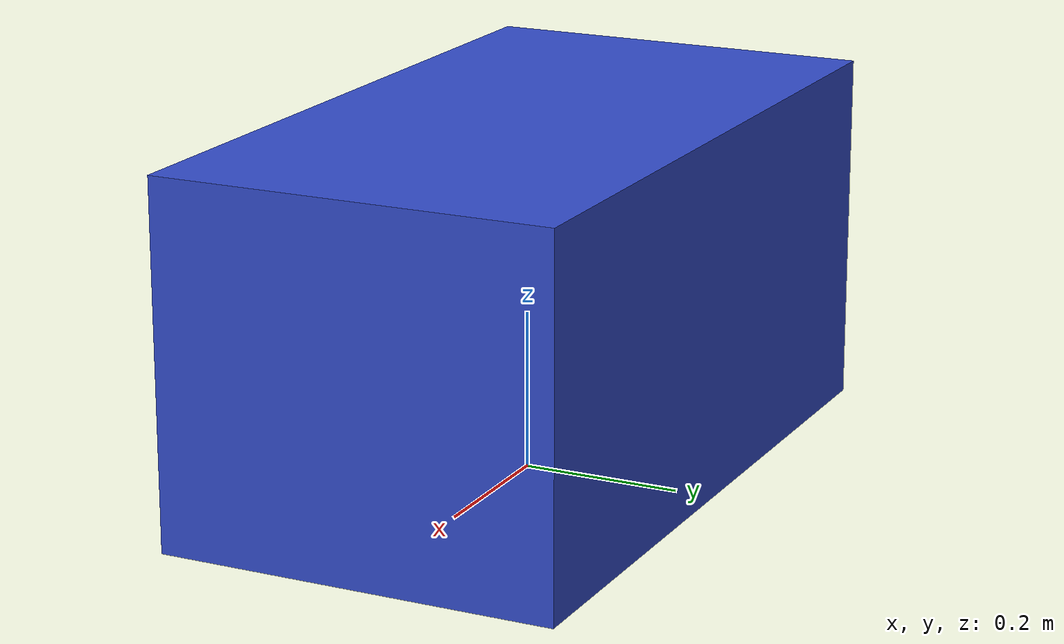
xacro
<?xml version="1.0"?>
<robot xmlns:xacro="http://www.ros.org/wiki/xacro" name="gb_dog">

  <!-- 机器人基本参数 -->
  <xacro:property name="body_length" value="0.9" />
  <xacro:property name="body_width" value="0.5" />
  <xacro:property name="body_height" value="0.45" />
  <xacro:property name="body_mass" value="15.0" />

  <!-- 外参 (TODO: 替换为实际标定值) -->
  <xacro:property name="lidar_x" value="0.191" />
  <xacro:property name="lidar_y" value="0.0" />
  <xacro:property name="lidar_z" value="0.1" />
  <xacro:property name="lidar_roll" value="0.0" />
  <xacro:property name="lidar_pitch" value="0.0" />
  <xacro:property name="lidar_yaw" value="0.0" />

  <xacro:property name="imu_x" value="0.0" />
  <xacro:property name="imu_y" value="0.0" />
  <xacro:property name="imu_z" value="0.05" />
  <xacro:property name="imu_roll" value="0.0" />
  <xacro:property name="imu_pitch" value="0.0" />
  <xacro:property name="imu_yaw" value="0.0" />

  <!-- base_link - 机器人主体 -->
  <link name="base_link">
    <inertial>
      <origin xyz="0 0 0" rpy="0 0 0" />
      <mass value="${body_mass}" />
      <inertia ixx="0.1" ixy="0.0" ixz="0.0"
               iyy="0.1" iyz="0.0"
               izz="0.1" />
    </inertial>
    <visual>
      <origin xyz="0 0 ${body_height/2}" rpy="0 0 0" />
      <geometry>
        <box size="${body_length} ${body_width} ${body_height}" />
      </geometry>
      <material name="blue">
        <color rgba="0.2 0.3 0.8 1.0" />
      </material>
    </visual>
    <collision>
      <origin xyz="0 0 ${body_height/2}" rpy="0 0 0" />
      <geometry>
        <box size="${body_length} ${body_width} ${body_height}" />
      </geometry>
    </collision>
  </link>

  <!-- lidar_link -->
  <link name="lidar_link">
    <inertial>
      <mass value="0.3" />
      <inertia ixx="0.001" ixy="0.0" ixz="0.0"
               iyy="0.001" iyz="0.0"
               izz="0.001" />
    </inertial>
    <visual>
      <origin xyz="0 0 0" rpy="0 0 0" />
      <geometry>
        <cylinder radius="0.04" length="0.05" />
      </geometry>
      <material name="red">
        <color rgba="0.8 0.2 0.2 1.0" />
      </material>
    </visual>
  </link>

  <!-- imu_link -->
  <link name="imu_link">
    <inertial>
      <mass value="0.05" />
      <inertia ixx="0.0001" ixy="0.0" ixz="0.0"
               iyy="0.0001" iyz="0.0"
               izz="0.0001" />
    </inertial>
  </link>

  <!-- base_link → lidar_link -->
  <joint name="lidar_joint" type="fixed">
    <parent link="base_link" />
    <child link="lidar_link" />
    <origin xyz="${lidar_x} ${lidar_y} ${lidar_z}"
            rpy="${lidar_roll} ${lidar_pitch} ${lidar_yaw}" />
  </joint>

  <!-- base_link → imu_link -->
  <joint name="imu_joint" type="fixed">
    <parent link="base_link" />
    <child link="imu_link" />
    <origin xyz="${imu_x} ${imu_y} ${imu_z}"
            rpy="${imu_roll} ${imu_pitch} ${imu_yaw}" />
  </joint>

</robot>
